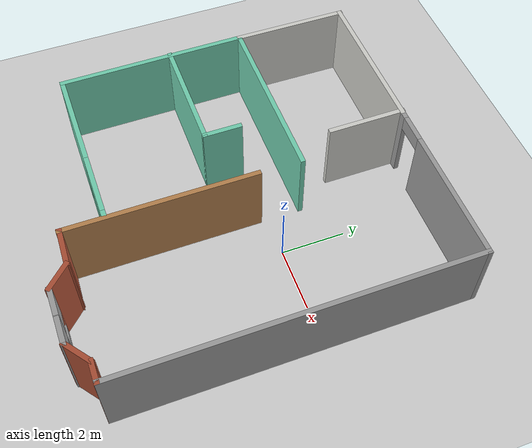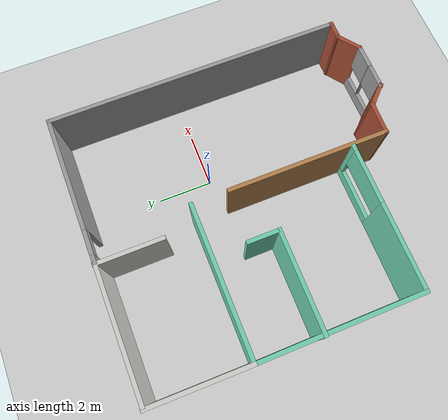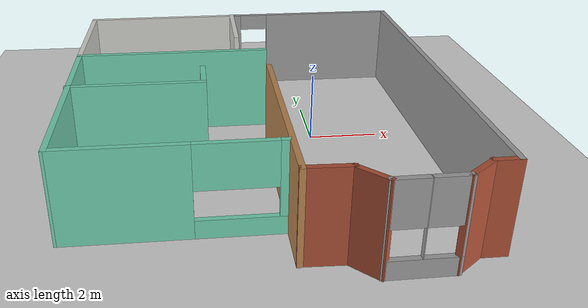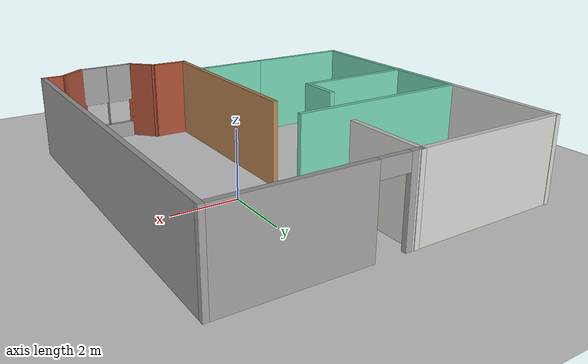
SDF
<sdf version="1.6">
 <world name="default">
  <light name="sun" type="directional">
   <pose>0 0 10 0 -0 0</pose>
   <diffuse>0.8 0.8 0.8 1</diffuse>
   <specular>0.2 0.2 0.2 1</specular>
   <attenuation>
    <range>1000</range>
    <constant>0.9</constant>
    <linear>0.01</linear>
    <quadratic>0.001</quadratic>
   </attenuation>
   <direction>-0.5 0.1 -0.9</direction>
  </light>
  <model name="ground_plane">
   <static>1</static>
   <link name="link">
    <collision name="collision">
     <geometry><plane><normal>0 0 1</normal><size>100 100</size></plane></geometry>
     <surface><friction><ode><mu>100</mu><mu2>50</mu2></ode></friction></surface>
    </collision>
    <visual name="visual">
     <cast_shadows>0</cast_shadows>
     <geometry><plane><normal>0 0 1</normal><size>100 100</size></plane></geometry>
     <material>
      <script><uri>file://media/materials/scripts/gazebo.material</uri><name>Gazebo/Grey</name></script>
     </material>
    </visual>
   </link>
  </model>
  <gravity>0 0 -9.8</gravity>
  <magnetic_field>6e-06 2.3e-05 -4.2e-05</magnetic_field>
  <atmosphere type="adiabatic"/>
  <physics name="default_physics" default="0" type="ode">
   <max_step_size>0.001</max_step_size>
   <real_time_factor>1</real_time_factor>
   <real_time_update_rate>1000</real_time_update_rate>
  </physics>
  <scene><ambient>0.4 0.4 0.4 1</ambient><background>0.7 0.7 0.7 1</background><shadows>1</shadows></scene>
  <spherical_coordinates>
   <surface_model>EARTH_WGS84</surface_model>
   <latitude_deg>0</latitude_deg>
   <longitude_deg>0</longitude_deg>
   <elevation>0</elevation>
   <heading_deg>0</heading_deg>
  </spherical_coordinates>
  <model name="myWorld">
   <pose>-1.74409 -1.0558 0.019365 0 -0 0</pose>
   <link name="Wall_1">
    <collision name="Wall_1_Collision">
     <geometry><box><size>6 0.15 2.5</size></box></geometry>
     <pose>0 0 1.25 0 -0 0</pose>
    </collision>
    <visual name="Wall_1_Visual">
     <pose>0 0 1.25 0 -0 0</pose>
     <geometry><box><size>6 0.15 2.5</size></box></geometry>
     <material>
      <script><uri>file://media/materials/scripts/gazebo.material</uri><name>Gazebo/Wood</name></script>
      <ambient>1 1 1 1</ambient>
     </material>
     <meta><layer>0</layer></meta>
    </visual>
    <pose>0.408173 -2.14572 0 0 0 -1.5708</pose>
   </link>
   <link name="Wall_18">
    <collision name="Wall_18_Collision">
     <geometry><box><size>10.9886 0.15 2.5</size></box></geometry>
     <pose>0 0 1.25 0 -0 0</pose>
    </collision>
    <visual name="Wall_18_Visual">
     <pose>0 0 1.25 0 -0 0</pose>
     <geometry><box><size>10.9886 0.15 2.5</size></box></geometry>
     <material>
      <script><uri>file://media/materials/scripts/gazebo.material</uri><name>Gazebo/Grey</name></script>
      <ambient>1 1 1 1</ambient>
     </material>
     <meta><layer>0</layer></meta>
    </visual>
    <pose>5.07141 0.284616 0 0 -0 1.5708</pose>
   </link>
   <link name="Wall_2">
    <collision name="Wall_2_Collision">
     <geometry><box><size>1.25 0.15 2.5</size></box></geometry>
     <pose>0 0 1.25 0 -0 0</pose>
    </collision>
    <visual name="Wall_2_Visual">
     <pose>0 0 1.25 0 -0 0</pose>
     <geometry><box><size>1.25 0.15 2.5</size></box></geometry>
     <material>
      <script><uri>file://media/materials/scripts/gazebo.material</uri><name>Gazebo/Bricks</name></script>
      <ambient>1 1 1 1</ambient>
     </material>
     <meta><layer>0</layer></meta>
    </visual>
    <pose>0.958173 -5.07072 0 0 0 -0.031789</pose>
   </link>
   <link name="Wall_20">
    <pose>2.39641 5.7039 0 0 -0 3.14159</pose>
    <visual name="Wall_20_Visual_0">
     <pose>-0.620935 0 1.25 0 -0 0</pose>
     <geometry><box><size>4.25813 0.15 2.5</size></box></geometry>
     <material>
      <script><uri>file://media/materials/scripts/gazebo.material</uri><name>Gazebo/Grey</name></script>
      <ambient>1 1 1 1</ambient>
     </material>
     <meta><layer>0</layer></meta>
    </visual>
    <collision name="Wall_20_Collision_0">
     <geometry><box><size>4.25813 0.15 2.5</size></box></geometry>
     <pose>-0.620935 0 1.25 0 -0 0</pose>
    </collision>
    <visual name="Wall_20_Visual_1">
     <pose>2.57906 0 1.25 0 -0 0</pose>
     <geometry><box><size>0.341869 0.15 2.5</size></box></geometry>
     <material>
      <script><uri>file://media/materials/scripts/gazebo.material</uri><name>Gazebo/Grey</name></script>
      <ambient>1 1 1 1</ambient>
     </material>
     <meta><layer>0</layer></meta>
    </visual>
    <collision name="Wall_20_Collision_1">
     <geometry><box><size>0.341869 0.15 2.5</size></box></geometry>
     <pose>2.57906 0 1.25 0 -0 0</pose>
    </collision>
    <visual name="Wall_20_Visual_2">
     <pose>1.95813 0 2.25 0 -0 0</pose>
     <geometry><box><size>0.9 0.15 0.5</size></box></geometry>
     <material>
      <script><uri>file://media/materials/scripts/gazebo.material</uri><name>Gazebo/Grey</name></script>
      <ambient>1 1 1 1</ambient>
     </material>
     <meta><layer>0</layer></meta>
    </visual>
    <collision name="Wall_20_Collision_2">
     <geometry><box><size>0.9 0.15 0.5</size></box></geometry>
     <pose>1.95813 0 2.25 0 -0 0</pose>
    </collision>
   </link>
   <link name="Wall_22">
    <collision name="Wall_22_Collision">
     <geometry><box><size>4.8978 0.15 2.5</size></box></geometry>
     <pose>0 0 1.25 0 -0 0</pose>
    </collision>
    <visual name="Wall_22_Visual">
     <pose>0 0 1.25 0 -0 0</pose>
     <geometry><box><size>4.8978 0.15 2.5</size></box></geometry>
     <material>
      <script><uri>file://media/materials/scripts/gazebo.material</uri><name>Gazebo/CeilingTiled</name></script>
      <ambient>1 1 1 1</ambient>
     </material>
     <meta><layer>0</layer></meta>
    </visual>
    <pose>-2.6523 5.68869 0 0 0 -3.13519</pose>
   </link>
   <link name="Wall_23">
    <collision name="Wall_23_Collision">
     <geometry><box><size>3.72179 0.15 2.5</size></box></geometry>
     <pose>0 0 1.25 0 -0 0</pose>
    </collision>
    <visual name="Wall_23_Visual">
     <pose>0 0 1.25 0 -0 0</pose>
     <geometry><box><size>3.72179 0.15 2.5</size></box></geometry>
     <material>
      <script><uri>file://media/materials/scripts/gazebo.material</uri><name>Gazebo/CeilingTiled</name></script>
      <ambient>1 1 1 1</ambient>
     </material>
     <meta><layer>0</layer></meta>
    </visual>
    <pose>-5.03927 3.90281 0 0 0 -1.57822</pose>
   </link>
   <link name="Wall_24">
    <collision name="Wall_24_Collision">
     <geometry><box><size>5.59881 0.15 2.5</size></box></geometry>
     <pose>0 0 1.25 0 -0 0</pose>
    </collision>
    <visual name="Wall_24_Visual">
     <pose>0 0 1.25 0 -0 0</pose>
     <geometry><box><size>5.59881 0.15 2.5</size></box></geometry>
     <material>
      <script><uri>file://media/materials/scripts/gazebo.material</uri><name>Gazebo/Grey</name></script>
      <ambient>0.435294 0.796078 0.67451 1</ambient>
     </material>
     <meta><layer>0</layer></meta>
    </visual>
    <pose>-2.31491 2.12703 0 0 -0 0.003711</pose>
   </link>
   <link name="Wall_26">
    <collision name="Wall_26_Collision">
     <geometry><box><size>2.5 0.15 2.5</size></box></geometry>
     <pose>0 0 1.25 0 -0 0</pose>
    </collision>
    <visual name="Wall_26_Visual">
     <pose>0 0 1.25 0 -0 0</pose>
     <geometry><box><size>2.5 0.15 2.5</size></box></geometry>
     <material>
      <script><uri>file://media/materials/scripts/gazebo.material</uri><name>Gazebo/CeilingTiled</name></script>
      <ambient>1 1 1 1</ambient>
     </material>
     <meta><layer>0</layer></meta>
    </visual>
    <pose>-0.330965 4.55103 0 0 -0 1.5708</pose>
   </link>
   <link name="Wall_28">
    <collision name="Wall_28_Collision">
     <geometry><box><size>6.04346 0.15 2.5</size></box></geometry>
     <pose>0 0 1.25 0 -0 0</pose>
    </collision>
    <visual name="Wall_28_Visual">
     <pose>0 0 1.25 0 -0 0</pose>
     <geometry><box><size>6.04346 0.15 2.5</size></box></geometry>
     <material>
      <script><uri>file://media/materials/scripts/gazebo.material</uri><name>Gazebo/Grey</name></script>
      <ambient>0.435294 0.796078 0.67451 1</ambient>
     </material>
     <meta><layer>0</layer></meta>
    </visual>
    <pose>-5.03927 -0.829799 0 0 0 -1.5663</pose>
   </link>
   <link name="Wall_29">
    <pose>-2.35101 -3.77652 0 0 -0 0</pose>
    <visual name="Wall_29_Visual_0">
     <pose>-1.12879 0 1.25 0 -0 0</pose>
     <geometry><box><size>3.24243 0.15 2.5</size></box></geometry>
     <material>
      <script><uri>file://media/materials/scripts/gazebo.material</uri><name>Gazebo/Grey</name></script>
      <ambient>0.435294 0.796078 0.67451 1</ambient>
     </material>
     <meta><layer>0</layer></meta>
    </visual>
    <collision name="Wall_29_Collision_0">
     <geometry><box><size>3.24243 0.15 2.5</size></box></geometry>
     <pose>-1.12879 0 1.25 0 -0 0</pose>
    </collision>
    <visual name="Wall_29_Visual_1">
     <pose>1.62121 0 0.25 0 -0 0</pose>
     <geometry><box><size>2.25757 0.15 0.5</size></box></geometry>
     <material>
      <script><uri>file://media/materials/scripts/gazebo.material</uri><name>Gazebo/Grey</name></script>
      <ambient>0.435294 0.796078 0.67451 1</ambient>
     </material>
     <meta><layer>0</layer></meta>
    </visual>
    <collision name="Wall_29_Collision_1">
     <geometry><box><size>2.25757 0.15 0.5</size></box></geometry>
     <pose>1.62121 0 0.25 0 -0 0</pose>
    </collision>
    <visual name="Wall_29_Visual_2">
     <pose>2.62121 0 1.5 0 -0 0</pose>
     <geometry><box><size>0.257574 0.15 2</size></box></geometry>
     <material>
      <script><uri>file://media/materials/scripts/gazebo.material</uri><name>Gazebo/Grey</name></script>
      <ambient>0.435294 0.796078 0.67451 1</ambient>
     </material>
     <meta><layer>0</layer></meta>
    </visual>
    <collision name="Wall_29_Collision_2">
     <geometry><box><size>0.257574 0.15 2</size></box></geometry>
     <pose>2.62121 0 1.5 0 -0 0</pose>
    </collision>
    <visual name="Wall_29_Visual_3">
     <pose>1.49243 0 1.9 0 -0 0</pose>
     <geometry><box><size>2 0.15 1.2</size></box></geometry>
     <material>
      <script><uri>file://media/materials/scripts/gazebo.material</uri><name>Gazebo/Grey</name></script>
      <ambient>0.435294 0.796078 0.67451 1</ambient>
     </material>
     <meta><layer>0</layer></meta>
    </visual>
    <collision name="Wall_29_Collision_3">
     <geometry><box><size>2 0.15 1.2</size></box></geometry>
     <pose>1.49243 0 1.9 0 -0 0</pose>
    </collision>
   </link>
   <link name="Wall_3">
    <collision name="Wall_3_Collision">
     <geometry><box><size>1 0.15 2.5</size></box></geometry>
     <pose>0 0 1.25 0 -0 0</pose>
    </collision>
    <visual name="Wall_3_Visual">
     <pose>0 0 1.25 0 -0 0</pose>
     <geometry><box><size>1 0.15 2.5</size></box></geometry>
     <material>
      <script><uri>file://media/materials/scripts/gazebo.material</uri><name>Gazebo/Bricks</name></script>
      <ambient>1 1 1 1</ambient>
     </material>
     <meta><layer>0</layer></meta>
    </visual>
    <pose>1.80298 -5.39445 0 0 0 -0.785398</pose>
   </link>
   <link name="Wall_31">
    <collision name="Wall_31_Collision">
     <geometry><box><size>3.75 0.15 2.5</size></box></geometry>
     <pose>0 0 1.25 0 -0 0</pose>
    </collision>
    <visual name="Wall_31_Visual">
     <pose>0 0 1.25 0 -0 0</pose>
     <geometry><box><size>3.75 0.15 2.5</size></box></geometry>
     <material>
      <script><uri>file://media/materials/scripts/gazebo.material</uri><name>Gazebo/Grey</name></script>
      <ambient>0.435294 0.796078 0.67451 1</ambient>
     </material>
     <meta><layer>0</layer></meta>
    </visual>
    <pose>-3.27141 -0.245758 0 0 -0 0</pose>
   </link>
   <link name="Wall_32">
    <collision name="Wall_32_Collision">
     <geometry><box><size>1.25 0.15 2.5</size></box></geometry>
     <pose>0 0 1.25 0 -0 0</pose>
    </collision>
    <visual name="Wall_32_Visual">
     <pose>0 0 1.25 0 -0 0</pose>
     <geometry><box><size>1.25 0.15 2.5</size></box></geometry>
     <material>
      <script><uri>file://media/materials/scripts/gazebo.material</uri><name>Gazebo/Grey</name></script>
      <ambient>0.435294 0.796078 0.67451 1</ambient>
     </material>
     <meta><layer>0</layer></meta>
    </visual>
    <pose>-1.47141 0.304242 0 0 -0 1.5708</pose>
   </link>
   <link name="Wall_4">
    <pose>2.9426 -5.68332 0 0 -0 0.00712</pose>
    <visual name="Wall_4_Visual_0">
     <pose>-0.858752 0 1.25 0 -0 0</pose>
     <geometry><box><size>0.099322 0.15 2.5</size></box></geometry>
     <material>
      <script><uri>file://media/materials/scripts/gazebo.material</uri><name>Gazebo/Grey</name></script>
      <ambient>1 1 1 1</ambient>
     </material>
     <meta><layer>0</layer></meta>
    </visual>
    <collision name="Wall_4_Collision_0">
     <geometry><box><size>0.099322 0.15 2.5</size></box></geometry>
     <pose>-0.858752 0 1.25 0 -0 0</pose>
    </collision>
    <visual name="Wall_4_Visual_1">
     <pose>0.049661 0 0.25 0 -0 0</pose>
     <geometry><box><size>1.7175 0.15 0.5</size></box></geometry>
     <material>
      <script><uri>file://media/materials/scripts/gazebo.material</uri><name>Gazebo/Grey</name></script>
      <ambient>1 1 1 1</ambient>
     </material>
     <meta><layer>0</layer></meta>
    </visual>
    <collision name="Wall_4_Collision_1">
     <geometry><box><size>1.7175 0.15 0.5</size></box></geometry>
     <pose>0.049661 0 0.25 0 -0 0</pose>
    </collision>
    <visual name="Wall_4_Visual_2">
     <pose>0.000934 0 1.5 0 -0 0</pose>
     <geometry><box><size>0.02005 0.15 2</size></box></geometry>
     <material>
      <script><uri>file://media/materials/scripts/gazebo.material</uri><name>Gazebo/Grey</name></script>
      <ambient>1 1 1 1</ambient>
     </material>
     <meta><layer>0</layer></meta>
    </visual>
    <collision name="Wall_4_Collision_2">
     <geometry><box><size>0.02005 0.15 2</size></box></geometry>
     <pose>0.000934 0 1.5 0 -0 0</pose>
    </collision>
    <visual name="Wall_4_Visual_3">
     <pose>0.859686 0 1.5 0 -0 0</pose>
     <geometry><box><size>0.097453 0.15 2</size></box></geometry>
     <material>
      <script><uri>file://media/materials/scripts/gazebo.material</uri><name>Gazebo/Grey</name></script>
      <ambient>1 1 1 1</ambient>
     </material>
     <meta><layer>0</layer></meta>
    </visual>
    <collision name="Wall_4_Collision_3">
     <geometry><box><size>0.097453 0.15 2</size></box></geometry>
     <pose>0.859686 0 1.5 0 -0 0</pose>
    </collision>
    <visual name="Wall_4_Visual_4">
     <pose>-0.409091 0 1.9 0 -0 0</pose>
     <geometry><box><size>0.8 0.15 1.2</size></box></geometry>
     <material>
      <script><uri>file://media/materials/scripts/gazebo.material</uri><name>Gazebo/Grey</name></script>
      <ambient>1 1 1 1</ambient>
     </material>
     <meta><layer>0</layer></meta>
    </visual>
    <collision name="Wall_4_Collision_4">
     <geometry><box><size>0.8 0.15 1.2</size></box></geometry>
     <pose>-0.409091 0 1.9 0 -0 0</pose>
    </collision>
    <visual name="Wall_4_Visual_5">
     <pose>0.41096 0 1.9 0 -0 0</pose>
     <geometry><box><size>0.8 0.15 1.2</size></box></geometry>
     <material>
      <script><uri>file://media/materials/scripts/gazebo.material</uri><name>Gazebo/Grey</name></script>
      <ambient>1 1 1 1</ambient>
     </material>
     <meta><layer>0</layer></meta>
    </visual>
    <collision name="Wall_4_Collision_5">
     <geometry><box><size>0.8 0.15 1.2</size></box></geometry>
     <pose>0.41096 0 1.9 0 -0 0</pose>
    </collision>
   </link>
   <link name="Wall_5">
    <collision name="Wall_5_Collision">
     <geometry><box><size>1.02513 0.15 2.5</size></box></geometry>
     <pose>0 0 1.25 0 -0 0</pose>
    </collision>
    <visual name="Wall_5_Visual">
     <pose>0 0 1.25 0 -0 0</pose>
     <geometry><box><size>1.02513 0.15 2.5</size></box></geometry>
     <material>
      <script><uri>file://media/materials/scripts/gazebo.material</uri><name>Gazebo/Bricks</name></script>
      <ambient>1 1 1 1</ambient>
     </material>
     <meta><layer>0</layer></meta>
    </visual>
    <pose>4.1237 -5.40602 0 0 -0 0.652393</pose>
   </link>
   <link name="Wall_6">
    <collision name="Wall_6_Collision">
     <geometry><box><size>0.75 0.15 2.5</size></box></geometry>
     <pose>0 0 1.25 0 -0 0</pose>
    </collision>
    <visual name="Wall_6_Visual">
     <pose>0 0 1.25 0 -0 0</pose>
     <geometry><box><size>0.75 0.15 2.5</size></box></geometry>
     <material>
      <script><uri>file://media/materials/scripts/gazebo.material</uri><name>Gazebo/Bricks</name></script>
      <ambient>1 1 1 1</ambient>
     </material>
     <meta><layer>0</layer></meta>
    </visual>
    <pose>4.7714 -5.14038 0 0 -0 0</pose>
   </link>
   <static>1</static>
  </model>
  <plugin name="collision_map_creator" filename="libcollision_map_creator.so"/>
 </world>
</sdf>
